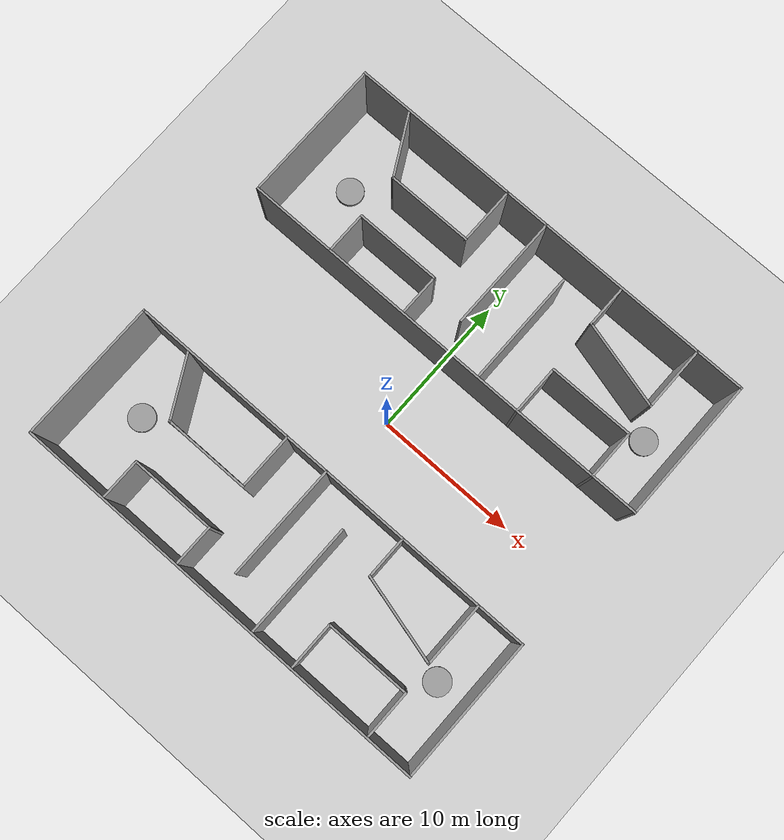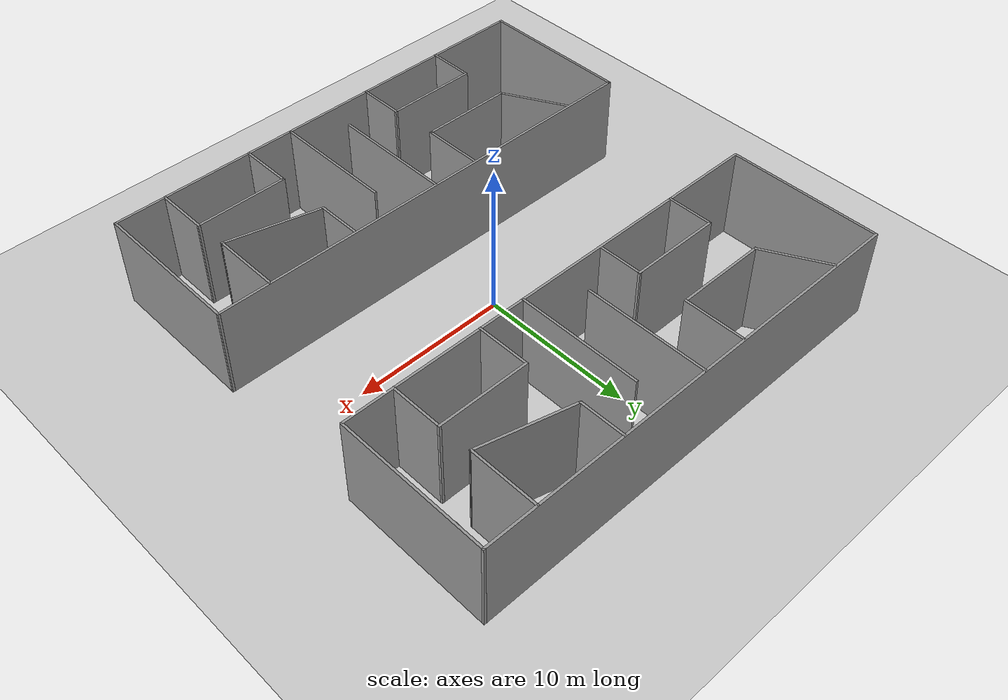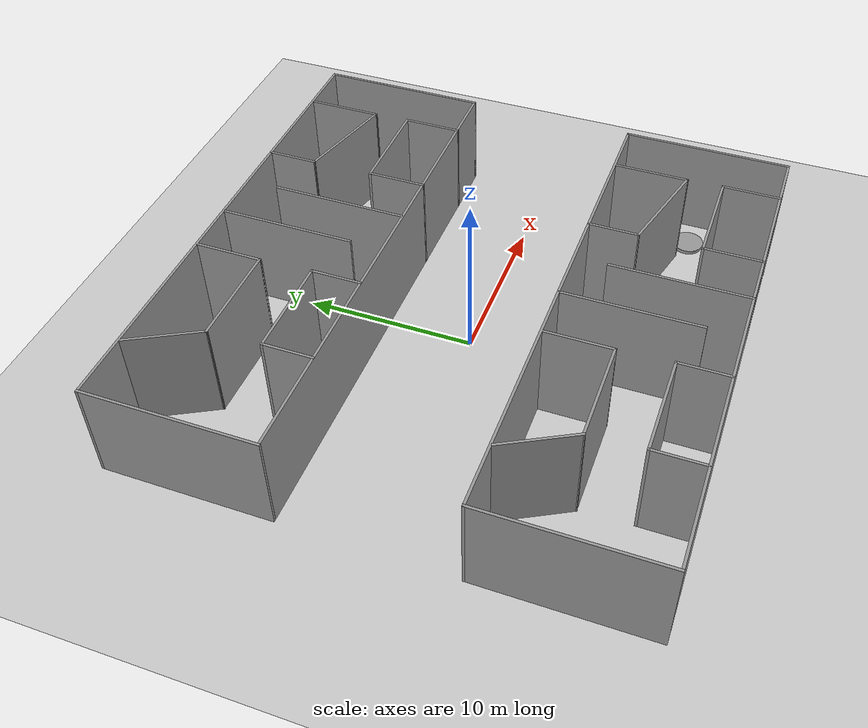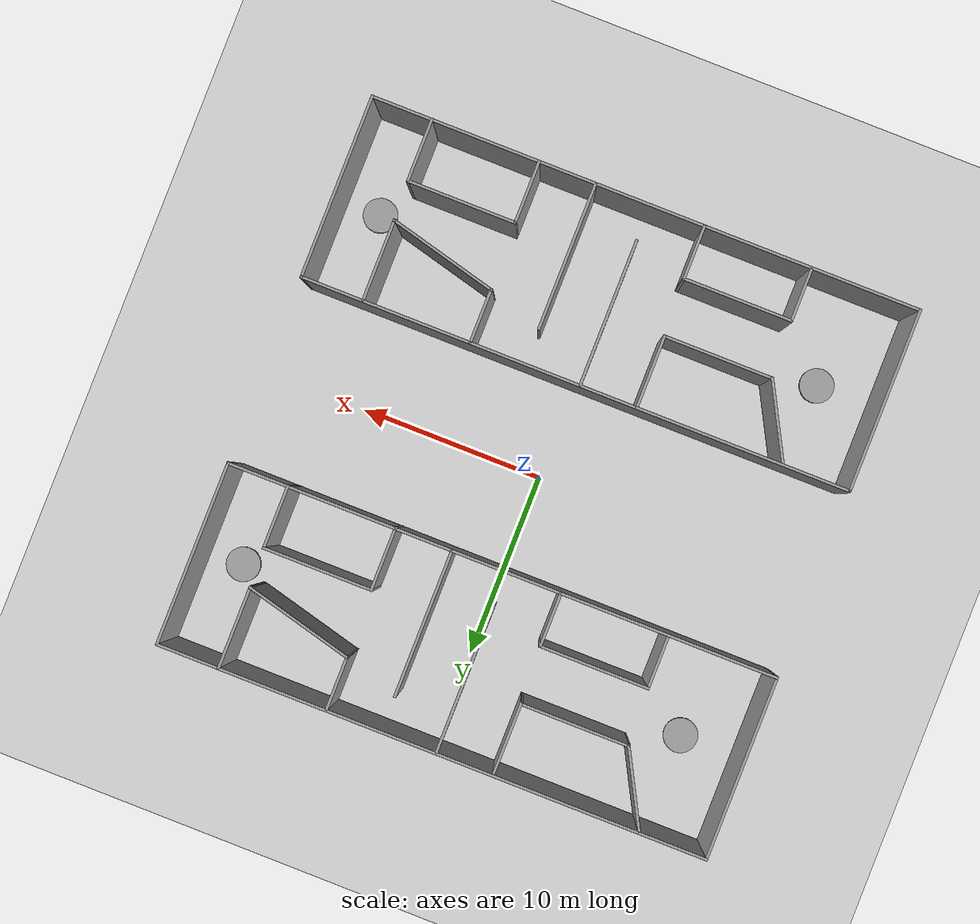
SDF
<sdf version="1.6">
 <world name="default">
  <light name="sun" type="directional">
   <pose>0 0 10 0 -0 0</pose>
   <diffuse>0.8 0.8 0.8 1</diffuse>
   <specular>0.2 0.2 0.2 1</specular>
   <attenuation>
    <range>1000</range>
    <constant>0.9</constant>
    <linear>0.01</linear>
    <quadratic>0.001</quadratic>
   </attenuation>
   <direction>-0.5 0.1 -0.9</direction>
  </light>
  <model name="ground_plane">
   <static>1</static>
   <link name="link">
    <collision name="collision">
     <geometry><plane><normal>0 0 1</normal><size>100 100</size></plane></geometry>
     <surface>
      <contact><collide_bitmask>65535</collide_bitmask></contact>
      <friction><ode><mu>100</mu><mu2>50</mu2></ode></friction>
     </surface>
    </collision>
    <visual name="visual">
     <cast_shadows>0</cast_shadows>
     <geometry><plane><normal>0 0 1</normal><size>100 100</size></plane></geometry>
     <material>
      <script><uri>file://media/materials/scripts/gazebo.material</uri><name>Gazebo/Grey</name></script>
     </material>
    </visual>
   </link>
  </model>
  <gravity>0 0 -9.8</gravity>
  <magnetic_field>6e-06 2.3e-05 -4.2e-05</magnetic_field>
  <atmosphere type="adiabatic"/>
  <physics name="default_physics" default="0" type="ode">
   <max_step_size>0.001</max_step_size>
   <real_time_factor>1</real_time_factor>
   <real_time_update_rate>1000</real_time_update_rate>
  </physics>
  <scene><ambient>0.4 0.4 0.4 1</ambient><background>0.7 0.7 0.7 1</background><shadows>1</shadows></scene>
  <spherical_coordinates>
   <surface_model>EARTH_WGS84</surface_model>
   <latitude_deg>0</latitude_deg>
   <longitude_deg>0</longitude_deg>
   <elevation>0</elevation>
   <heading_deg>0</heading_deg>
  </spherical_coordinates>
  <model name="static_cylinder">
   <link name="link">
    <inertial>
     <mass>1</mass>
     <inertia><ixx>0.145833</ixx><ixy>0</ixy><ixz>0</ixz><iyy>0.145833</iyy><iyz>0</iyz><izz>0.125</izz></inertia>
    </inertial>
    <visual name="visual">
     <geometry><cylinder><radius>0.935681</radius><length>0.376628</length></cylinder></geometry>
     <material>
      <script><name>Gazebo/Grey</name><uri>file://media/materials/scripts/gazebo.material</uri></script>
      <shader type="pixel"/>
      <ambient>0.3 0.3 0.3 1</ambient>
      <diffuse>0.7 0.7 0.7 1</diffuse>
      <specular>0.01 0.01 0.01 1</specular>
      <emissive>0 0 0 1</emissive>
     </material>
    </visual>
    <collision name="collision">
     <geometry><cylinder><radius>0.935681</radius><length>0.376628</length></cylinder></geometry>
     <surface>
      <friction>
       <ode><mu>1</mu><mu2>1</mu2><fdir1>0 0 0</fdir1><slip1>0</slip1><slip2>0</slip2></ode>
       <torsional>
        <coefficient>1</coefficient>
        <patch_radius>0</patch_radius>
        <surface_radius>0</surface_radius>
        <use_patch_radius>1</use_patch_radius>
        <ode><slip>0</slip></ode>
       </torsional>
      </friction>
      <bounce><restitution_coefficient>0</restitution_coefficient><threshold>1e+06</threshold></bounce>
      <contact>
       <collide_without_contact>0</collide_without_contact>
       <collide_without_contact_bitmask>1</collide_without_contact_bitmask>
       <collide_bitmask>1</collide_bitmask>
       <ode>
        <soft_cfm>0</soft_cfm>
        <soft_erp>0.2</soft_erp>
        <kp>1e+13</kp>
        <kd>1</kd>
        <max_vel>0.01</max_vel>
        <min_depth>0</min_depth>
       </ode>
       <bullet>
        <split_impulse>1</split_impulse>
        <split_impulse_penetration_threshold>-0.01</split_impulse_penetration_threshold>
        <soft_cfm>0</soft_cfm>
        <soft_erp>0.2</soft_erp>
        <kp>1e+13</kp>
        <kd>1</kd>
       </bullet>
      </contact>
     </surface>
    </collision>
   </link>
   <static>1</static>
   <pose>-12 10 0 0 -0 0</pose>
  </model>
  <model name="static_cylinder_clone">
   <link name="link">
    <inertial>
     <mass>1</mass>
     <inertia><ixx>0.145833</ixx><ixy>0</ixy><ixz>0</ixz><iyy>0.145833</iyy><iyz>0</iyz><izz>0.125</izz></inertia>
    </inertial>
    <visual name="visual">
     <geometry><cylinder><radius>0.935682</radius><length>0.376629</length></cylinder></geometry>
     <material>
      <script><name>Gazebo/Grey</name><uri>file://media/materials/scripts/gazebo.material</uri></script>
      <shader type="pixel"/>
      <ambient>0.3 0.3 0.3 1</ambient>
      <diffuse>0.7 0.7 0.7 1</diffuse>
      <specular>0.01 0.01 0.01 1</specular>
      <emissive>0 0 0 1</emissive>
     </material>
    </visual>
    <collision name="collision">
     <geometry><cylinder><radius>0.935682</radius><length>0.376629</length></cylinder></geometry>
     <surface>
      <friction>
       <ode><mu>1</mu><mu2>1</mu2><fdir1>0 0 0</fdir1><slip1>0</slip1><slip2>0</slip2></ode>
       <torsional>
        <coefficient>1</coefficient>
        <patch_radius>0</patch_radius>
        <surface_radius>0</surface_radius>
        <use_patch_radius>1</use_patch_radius>
        <ode><slip>0</slip></ode>
       </torsional>
      </friction>
      <bounce><restitution_coefficient>0</restitution_coefficient><threshold>1e+06</threshold></bounce>
      <contact>
       <collide_without_contact>0</collide_without_contact>
       <collide_without_contact_bitmask>1</collide_without_contact_bitmask>
       <collide_bitmask>1</collide_bitmask>
       <ode>
        <soft_cfm>0</soft_cfm>
        <soft_erp>0.2</soft_erp>
        <kp>1e+13</kp>
        <kd>1</kd>
        <max_vel>0.01</max_vel>
        <min_depth>0</min_depth>
       </ode>
       <bullet>
        <split_impulse>1</split_impulse>
        <split_impulse_penetration_threshold>-0.01</split_impulse_penetration_threshold>
        <soft_cfm>0</soft_cfm>
        <soft_erp>0.2</soft_erp>
        <kp>1e+13</kp>
        <kd>1</kd>
       </bullet>
      </contact>
     </surface>
    </collision>
   </link>
   <static>1</static>
   <pose>13 10 0 0 -0 0</pose>
  </model>
  <model name="static_cylinder_clone_0">
   <link name="link">
    <inertial>
     <mass>1</mass>
     <inertia><ixx>0.145833</ixx><ixy>0</ixy><ixz>0</ixz><iyy>0.145833</iyy><iyz>0</iyz><izz>0.125</izz></inertia>
    </inertial>
    <visual name="visual">
     <geometry><cylinder><radius>0.935682</radius><length>0.376629</length></cylinder></geometry>
     <material>
      <script><name>Gazebo/Grey</name><uri>file://media/materials/scripts/gazebo.material</uri></script>
      <shader type="pixel"/>
      <ambient>0.3 0.3 0.3 1</ambient>
      <diffuse>0.7 0.7 0.7 1</diffuse>
      <specular>0.01 0.01 0.01 1</specular>
      <emissive>0 0 0 1</emissive>
     </material>
    </visual>
    <collision name="collision">
     <geometry><cylinder><radius>0.935682</radius><length>0.376629</length></cylinder></geometry>
     <surface>
      <friction>
       <ode><mu>1</mu><mu2>1</mu2><fdir1>0 0 0</fdir1><slip1>0</slip1><slip2>0</slip2></ode>
       <torsional>
        <coefficient>1</coefficient>
        <patch_radius>0</patch_radius>
        <surface_radius>0</surface_radius>
        <use_patch_radius>1</use_patch_radius>
        <ode><slip>0</slip></ode>
       </torsional>
      </friction>
      <bounce><restitution_coefficient>0</restitution_coefficient><threshold>1e+06</threshold></bounce>
      <contact>
       <collide_without_contact>0</collide_without_contact>
       <collide_without_contact_bitmask>1</collide_without_contact_bitmask>
       <collide_bitmask>1</collide_bitmask>
       <ode>
        <soft_cfm>0</soft_cfm>
        <soft_erp>0.2</soft_erp>
        <kp>1e+13</kp>
        <kd>1</kd>
        <max_vel>0.01</max_vel>
        <min_depth>0</min_depth>
       </ode>
       <bullet>
        <split_impulse>1</split_impulse>
        <split_impulse_penetration_threshold>-0.01</split_impulse_penetration_threshold>
        <soft_cfm>0</soft_cfm>
        <soft_erp>0.2</soft_erp>
        <kp>1e+13</kp>
        <kd>1</kd>
       </bullet>
      </contact>
     </surface>
    </collision>
   </link>
   <static>1</static>
   <pose>-12 -10 0 0 -0 0</pose>
  </model>
  <model name="static_cylinder_clone_0_clone">
   <link name="link">
    <inertial>
     <mass>1</mass>
     <inertia><ixx>0.145833</ixx><ixy>0</ixy><ixz>0</ixz><iyy>0.145833</iyy><iyz>0</iyz><izz>0.125</izz></inertia>
    </inertial>
    <visual name="visual">
     <geometry><cylinder><radius>0.935682</radius><length>0.376629</length></cylinder></geometry>
     <material>
      <script><name>Gazebo/Grey</name><uri>file://media/materials/scripts/gazebo.material</uri></script>
      <shader type="pixel"/>
      <ambient>0.3 0.3 0.3 1</ambient>
      <diffuse>0.7 0.7 0.7 1</diffuse>
      <specular>0.01 0.01 0.01 1</specular>
      <emissive>0 0 0 1</emissive>
     </material>
    </visual>
    <collision name="collision">
     <geometry><cylinder><radius>0.935682</radius><length>0.376629</length></cylinder></geometry>
     <surface>
      <friction>
       <ode><mu>1</mu><mu2>1</mu2><fdir1>0 0 0</fdir1><slip1>0</slip1><slip2>0</slip2></ode>
       <torsional>
        <coefficient>1</coefficient>
        <patch_radius>0</patch_radius>
        <surface_radius>0</surface_radius>
        <use_patch_radius>1</use_patch_radius>
        <ode><slip>0</slip></ode>
       </torsional>
      </friction>
      <bounce><restitution_coefficient>0</restitution_coefficient><threshold>1e+06</threshold></bounce>
      <contact>
       <collide_without_contact>0</collide_without_contact>
       <collide_without_contact_bitmask>1</collide_without_contact_bitmask>
       <collide_bitmask>1</collide_bitmask>
       <ode>
        <soft_cfm>0</soft_cfm>
        <soft_erp>0.2</soft_erp>
        <kp>1e+13</kp>
        <kd>1</kd>
        <max_vel>0.01</max_vel>
        <min_depth>0</min_depth>
       </ode>
       <bullet>
        <split_impulse>1</split_impulse>
        <split_impulse_penetration_threshold>-0.01</split_impulse_penetration_threshold>
        <soft_cfm>0</soft_cfm>
        <soft_erp>0.2</soft_erp>
        <kp>1e+13</kp>
        <kd>1</kd>
       </bullet>
      </contact>
     </surface>
    </collision>
   </link>
   <static>1</static>
   <pose>13 -10 0 0 -0 0</pose>
  </model>
  <model name="simple_maze_6">
   <pose>0 10 0 0 -0 0</pose>
   <link name="Wall_0">
    <collision name="Wall_0_Collision">
     <geometry><box><size>10 0.15 6</size></box></geometry>
     <pose>0 0 3 0 -0 0</pose>
    </collision>
    <visual name="Wall_0_Visual">
     <pose>0 0 3 0 -0 0</pose>
     <geometry><box><size>10 0.15 6</size></box></geometry>
     <material>
      <script><uri>file://media/materials/scripts/gazebo.material</uri><name>Gazebo/Grey</name></script>
      <ambient>1 1 1 1</ambient>
     </material>
     <meta><layer>0</layer></meta>
    </visual>
    <pose>-14.925 0.005 0 0 0 -1.5708</pose>
   </link>
   <link name="Wall_1">
    <collision name="Wall_1_Collision">
     <geometry><box><size>30 0.15 6</size></box></geometry>
     <pose>0 0 3 0 -0 0</pose>
    </collision>
    <visual name="Wall_1_Visual">
     <pose>0 0 3 0 -0 0</pose>
     <geometry><box><size>30 0.15 6</size></box></geometry>
     <material>
      <script><uri>file://media/materials/scripts/gazebo.material</uri><name>Gazebo/Grey</name></script>
      <ambient>1 1 1 1</ambient>
     </material>
     <meta><layer>0</layer></meta>
    </visual>
    <pose>0 -4.92 0 0 -0 0</pose>
   </link>
   <link name="Wall_10">
    <collision name="Wall_10_Collision">
     <geometry><box><size>6 0.15 6</size></box></geometry>
     <pose>0 0 3 0 -0 0</pose>
    </collision>
    <visual name="Wall_10_Visual">
     <pose>0 0 3 0 -0 0</pose>
     <geometry><box><size>6 0.15 6</size></box></geometry>
     <material>
      <script><uri>file://media/materials/scripts/gazebo.material</uri><name>Gazebo/Grey</name></script>
      <ambient>1 1 1 1</ambient>
     </material>
     <meta><layer>0</layer></meta>
    </visual>
    <pose>-6.11 -2.05 0 0 -0 3.14159</pose>
   </link>
   <link name="Wall_11">
    <collision name="Wall_11_Collision">
     <geometry><box><size>3 0.15 6</size></box></geometry>
     <pose>0 0 3 0 -0 0</pose>
    </collision>
    <visual name="Wall_11_Visual">
     <pose>0 0 3 0 -0 0</pose>
     <geometry><box><size>3 0.15 6</size></box></geometry>
     <material>
      <script><uri>file://media/materials/scripts/gazebo.material</uri><name>Gazebo/Grey</name></script>
      <ambient>1 1 1 1</ambient>
     </material>
     <meta><layer>0</layer></meta>
    </visual>
    <pose>-9.035 -3.475 0 0 0 -1.5708</pose>
   </link>
   <link name="Wall_13">
    <collision name="Wall_13_Collision">
     <geometry><box><size>8 0.15 6</size></box></geometry>
     <pose>0 0 3 0 -0 0</pose>
    </collision>
    <visual name="Wall_13_Visual">
     <pose>0 0 3 0 -0 0</pose>
     <geometry><box><size>8 0.15 6</size></box></geometry>
     <material>
      <script><uri>file://media/materials/scripts/gazebo.material</uri><name>Gazebo/Grey</name></script>
      <ambient>1 1 1 1</ambient>
     </material>
     <meta><layer>0</layer></meta>
    </visual>
    <pose>-0.245 0.965 0 0 0 -1.5708</pose>
   </link>
   <link name="Wall_16">
    <collision name="Wall_16_Collision">
     <geometry><box><size>8 0.15 6</size></box></geometry>
     <pose>0 0 3 0 -0 0</pose>
    </collision>
    <visual name="Wall_16_Visual">
     <pose>0 0 3 0 -0 0</pose>
     <geometry><box><size>8 0.15 6</size></box></geometry>
     <material>
      <script><uri>file://media/materials/scripts/gazebo.material</uri><name>Gazebo/Grey</name></script>
      <ambient>1 1 1 1</ambient>
     </material>
     <meta><layer>0</layer></meta>
    </visual>
    <pose>2.745 -0.945001 0 0 -0 1.5708</pose>
   </link>
   <link name="Wall_2">
    <collision name="Wall_2_Collision">
     <geometry><box><size>10 0.15 6</size></box></geometry>
     <pose>0 0 3 0 -0 0</pose>
    </collision>
    <visual name="Wall_2_Visual">
     <pose>0 0 3 0 -0 0</pose>
     <geometry><box><size>10 0.15 6</size></box></geometry>
     <material>
      <script><uri>file://media/materials/scripts/gazebo.material</uri><name>Gazebo/Grey</name></script>
      <ambient>1 1 1 1</ambient>
     </material>
     <meta><layer>0</layer></meta>
    </visual>
    <pose>14.925 0.005 0 0 -0 1.5708</pose>
   </link>
   <link name="Wall_26">
    <collision name="Wall_26_Collision">
     <geometry><box><size>3 0.15 6</size></box></geometry>
     <pose>0 0 3 0 -0 0</pose>
    </collision>
    <visual name="Wall_26_Visual">
     <pose>0 0 3 0 -0 0</pose>
     <geometry><box><size>3 0.15 6</size></box></geometry>
     <material>
      <script><uri>file://media/materials/scripts/gazebo.material</uri><name>Gazebo/Grey</name></script>
      <ambient>1 1 1 1</ambient>
     </material>
     <meta><layer>0</layer></meta>
    </visual>
    <pose>5.725 3.465 0 0 0 -1.5708</pose>
   </link>
   <link name="Wall_27">
    <collision name="Wall_27_Collision">
     <geometry><box><size>6.18925 0.15 6</size></box></geometry>
     <pose>0 0 3 0 -0 0</pose>
    </collision>
    <visual name="Wall_27_Visual">
     <pose>0 0 3 0 -0 0</pose>
     <geometry><box><size>6.18925 0.15 6</size></box></geometry>
     <material>
      <script><uri>file://media/materials/scripts/gazebo.material</uri><name>Gazebo/Grey</name></script>
      <ambient>1 1 1 1</ambient>
     </material>
     <meta><layer>0</layer></meta>
    </visual>
    <pose>8.65 1.29 0 0 0 -0.251003</pose>
   </link>
   <link name="Wall_28">
    <collision name="Wall_28_Collision">
     <geometry><box><size>4.5 0.15 6</size></box></geometry>
     <pose>0 0 3 0 -0 0</pose>
    </collision>
    <visual name="Wall_28_Visual">
     <pose>0 0 3 0 -0 0</pose>
     <geometry><box><size>4.5 0.15 6</size></box></geometry>
     <material>
      <script><uri>file://media/materials/scripts/gazebo.material</uri><name>Gazebo/Grey</name></script>
      <ambient>1 1 1 1</ambient>
     </material>
     <meta><layer>0</layer></meta>
    </visual>
    <pose>11.575 2.715 0 0 -0 1.5708</pose>
   </link>
   <link name="Wall_3">
    <collision name="Wall_3_Collision">
     <geometry><box><size>30 0.15 6</size></box></geometry>
     <pose>0 0 3 0 -0 0</pose>
    </collision>
    <visual name="Wall_3_Visual">
     <pose>0 0 3 0 -0 0</pose>
     <geometry><box><size>30 0.15 6</size></box></geometry>
     <material>
      <script><uri>file://media/materials/scripts/gazebo.material</uri><name>Gazebo/Grey</name></script>
      <ambient>1 1 1 1</ambient>
     </material>
     <meta><layer>0</layer></meta>
    </visual>
    <pose>0 4.93 0 0 -0 3.14159</pose>
   </link>
   <link name="Wall_30">
    <collision name="Wall_30_Collision">
     <geometry><box><size>3.5 0.15 6</size></box></geometry>
     <pose>0 0 3 0 -0 0</pose>
    </collision>
    <visual name="Wall_30_Visual">
     <pose>0 0 3 0 -0 0</pose>
     <geometry><box><size>3.5 0.15 6</size></box></geometry>
     <material>
      <script><uri>file://media/materials/scripts/gazebo.material</uri><name>Gazebo/Grey</name></script>
      <ambient>1 1 1 1</ambient>
     </material>
     <meta><layer>0</layer></meta>
    </visual>
    <pose>11.675 -3.255 0 0 -0 1.5708</pose>
   </link>
   <link name="Wall_31">
    <collision name="Wall_31_Collision">
     <geometry><box><size>6 0.15 6</size></box></geometry>
     <pose>0 0 3 0 -0 0</pose>
    </collision>
    <visual name="Wall_31_Visual">
     <pose>0 0 3 0 -0 0</pose>
     <geometry><box><size>6 0.15 6</size></box></geometry>
     <material>
      <script><uri>file://media/materials/scripts/gazebo.material</uri><name>Gazebo/Grey</name></script>
      <ambient>1 1 1 1</ambient>
     </material>
     <meta><layer>0</layer></meta>
    </visual>
    <pose>8.75 -1.58 0 0 -0 3.14159</pose>
   </link>
   <link name="Wall_32">
    <collision name="Wall_32_Collision">
     <geometry><box><size>3.5 0.15 6</size></box></geometry>
     <pose>0 0 3 0 -0 0</pose>
    </collision>
    <visual name="Wall_32_Visual">
     <pose>0 0 3 0 -0 0</pose>
     <geometry><box><size>3.5 0.15 6</size></box></geometry>
     <material>
      <script><uri>file://media/materials/scripts/gazebo.material</uri><name>Gazebo/Grey</name></script>
      <ambient>1 1 1 1</ambient>
     </material>
     <meta><layer>0</layer></meta>
    </visual>
    <pose>5.825 -3.255 0 0 0 -1.5708</pose>
   </link>
   <link name="Wall_5">
    <collision name="Wall_5_Collision">
     <geometry><box><size>4.46832 0.15 6</size></box></geometry>
     <pose>0 0 3 0 -0 0</pose>
    </collision>
    <visual name="Wall_5_Visual">
     <pose>0 0 3 0 -0 0</pose>
     <geometry><box><size>4.46832 0.15 6</size></box></geometry>
     <material>
      <script><uri>file://media/materials/scripts/gazebo.material</uri><name>Gazebo/Grey</name></script>
      <ambient>1 1 1 1</ambient>
     </material>
     <meta><layer>0</layer></meta>
    </visual>
    <pose>-10.21 2.9295 0 0 0 -1.07618</pose>
   </link>
   <link name="Wall_6">
    <collision name="Wall_6_Collision">
     <geometry><box><size>6 0.15 6</size></box></geometry>
     <pose>0 0 3 0 -0 0</pose>
    </collision>
    <visual name="Wall_6_Visual">
     <pose>0 0 3 0 -0 0</pose>
     <geometry><box><size>6 0.15 6</size></box></geometry>
     <material>
      <script><uri>file://media/materials/scripts/gazebo.material</uri><name>Gazebo/Grey</name></script>
      <ambient>1 1 1 1</ambient>
     </material>
     <meta><layer>0</layer></meta>
    </visual>
    <pose>-6.26 1.029 0 0 -0 0</pose>
   </link>
   <link name="Wall_7">
    <collision name="Wall_7_Collision">
     <geometry><box><size>4 0.15 6</size></box></geometry>
     <pose>0 0 3 0 -0 0</pose>
    </collision>
    <visual name="Wall_7_Visual">
     <pose>0 0 3 0 -0 0</pose>
     <geometry><box><size>4 0.15 6</size></box></geometry>
     <material>
      <script><uri>file://media/materials/scripts/gazebo.material</uri><name>Gazebo/Grey</name></script>
      <ambient>1 1 1 1</ambient>
     </material>
     <meta><layer>0</layer></meta>
    </visual>
    <pose>-3.335 2.954 0 0 -0 1.5708</pose>
   </link>
   <link name="Wall_9">
    <collision name="Wall_9_Collision">
     <geometry><box><size>3 0.15 6</size></box></geometry>
     <pose>0 0 3 0 -0 0</pose>
    </collision>
    <visual name="Wall_9_Visual">
     <pose>0 0 3 0 -0 0</pose>
     <geometry><box><size>3 0.15 6</size></box></geometry>
     <material>
      <script><uri>file://media/materials/scripts/gazebo.material</uri><name>Gazebo/Grey</name></script>
      <ambient>1 1 1 1</ambient>
     </material>
     <meta><layer>0</layer></meta>
    </visual>
    <pose>-3.185 -3.475 0 0 -0 1.5708</pose>
   </link>
   <static>1</static>
  </model>
  <model name="simple_maze_6_0">
   <pose>0 -10 0 0 -0 0</pose>
   <link name="Wall_0">
    <collision name="Wall_0_Collision">
     <geometry><box><size>10 0.15 6</size></box></geometry>
     <pose>0 0 3 0 -0 0</pose>
    </collision>
    <visual name="Wall_0_Visual">
     <pose>0 0 3 0 -0 0</pose>
     <geometry><box><size>10 0.15 6</size></box></geometry>
     <material>
      <script><uri>file://media/materials/scripts/gazebo.material</uri><name>Gazebo/Grey</name></script>
      <ambient>1 1 1 1</ambient>
     </material>
     <meta><layer>0</layer></meta>
    </visual>
    <pose>-14.925 0.005 0 0 0 -1.5708</pose>
   </link>
   <link name="Wall_1">
    <collision name="Wall_1_Collision">
     <geometry><box><size>30 0.15 6</size></box></geometry>
     <pose>0 0 3 0 -0 0</pose>
    </collision>
    <visual name="Wall_1_Visual">
     <pose>0 0 3 0 -0 0</pose>
     <geometry><box><size>30 0.15 6</size></box></geometry>
     <material>
      <script><uri>file://media/materials/scripts/gazebo.material</uri><name>Gazebo/Grey</name></script>
      <ambient>1 1 1 1</ambient>
     </material>
     <meta><layer>0</layer></meta>
    </visual>
    <pose>0 -4.92 0 0 -0 0</pose>
   </link>
   <link name="Wall_10">
    <collision name="Wall_10_Collision">
     <geometry><box><size>6 0.15 6</size></box></geometry>
     <pose>0 0 3 0 -0 0</pose>
    </collision>
    <visual name="Wall_10_Visual">
     <pose>0 0 3 0 -0 0</pose>
     <geometry><box><size>6 0.15 6</size></box></geometry>
     <material>
      <script><uri>file://media/materials/scripts/gazebo.material</uri><name>Gazebo/Grey</name></script>
      <ambient>1 1 1 1</ambient>
     </material>
     <meta><layer>0</layer></meta>
    </visual>
    <pose>-6.11 -2.05 0 0 -0 3.14159</pose>
   </link>
   <link name="Wall_11">
    <collision name="Wall_11_Collision">
     <geometry><box><size>3 0.15 6</size></box></geometry>
     <pose>0 0 3 0 -0 0</pose>
    </collision>
    <visual name="Wall_11_Visual">
     <pose>0 0 3 0 -0 0</pose>
     <geometry><box><size>3 0.15 6</size></box></geometry>
     <material>
      <script><uri>file://media/materials/scripts/gazebo.material</uri><name>Gazebo/Grey</name></script>
      <ambient>1 1 1 1</ambient>
     </material>
     <meta><layer>0</layer></meta>
    </visual>
    <pose>-9.035 -3.475 0 0 0 -1.5708</pose>
   </link>
   <link name="Wall_13">
    <collision name="Wall_13_Collision">
     <geometry><box><size>8 0.15 6</size></box></geometry>
     <pose>0 0 3 0 -0 0</pose>
    </collision>
    <visual name="Wall_13_Visual">
     <pose>0 0 3 0 -0 0</pose>
     <geometry><box><size>8 0.15 6</size></box></geometry>
     <material>
      <script><uri>file://media/materials/scripts/gazebo.material</uri><name>Gazebo/Grey</name></script>
      <ambient>1 1 1 1</ambient>
     </material>
     <meta><layer>0</layer></meta>
    </visual>
    <pose>-0.245 0.965 0 0 0 -1.5708</pose>
   </link>
   <link name="Wall_16">
    <collision name="Wall_16_Collision">
     <geometry><box><size>8 0.15 6</size></box></geometry>
     <pose>0 0 3 0 -0 0</pose>
    </collision>
    <visual name="Wall_16_Visual">
     <pose>0 0 3 0 -0 0</pose>
     <geometry><box><size>8 0.15 6</size></box></geometry>
     <material>
      <script><uri>file://media/materials/scripts/gazebo.material</uri><name>Gazebo/Grey</name></script>
      <ambient>1 1 1 1</ambient>
     </material>
     <meta><layer>0</layer></meta>
    </visual>
    <pose>2.745 -0.945001 0 0 -0 1.5708</pose>
   </link>
   <link name="Wall_2">
    <collision name="Wall_2_Collision">
     <geometry><box><size>10 0.15 6</size></box></geometry>
     <pose>0 0 3 0 -0 0</pose>
    </collision>
    <visual name="Wall_2_Visual">
     <pose>0 0 3 0 -0 0</pose>
     <geometry><box><size>10 0.15 6</size></box></geometry>
     <material>
      <script><uri>file://media/materials/scripts/gazebo.material</uri><name>Gazebo/Grey</name></script>
      <ambient>1 1 1 1</ambient>
     </material>
     <meta><layer>0</layer></meta>
    </visual>
    <pose>14.925 0.005 0 0 -0 1.5708</pose>
   </link>
   <link name="Wall_26">
    <collision name="Wall_26_Collision">
     <geometry><box><size>3 0.15 6</size></box></geometry>
     <pose>0 0 3 0 -0 0</pose>
    </collision>
    <visual name="Wall_26_Visual">
     <pose>0 0 3 0 -0 0</pose>
     <geometry><box><size>3 0.15 6</size></box></geometry>
     <material>
      <script><uri>file://media/materials/scripts/gazebo.material</uri><name>Gazebo/Grey</name></script>
      <ambient>1 1 1 1</ambient>
     </material>
     <meta><layer>0</layer></meta>
    </visual>
    <pose>5.725 3.465 0 0 0 -1.5708</pose>
   </link>
   <link name="Wall_27">
    <collision name="Wall_27_Collision">
     <geometry><box><size>6.18925 0.15 6</size></box></geometry>
     <pose>0 0 3 0 -0 0</pose>
    </collision>
    <visual name="Wall_27_Visual">
     <pose>0 0 3 0 -0 0</pose>
     <geometry><box><size>6.18925 0.15 6</size></box></geometry>
     <material>
      <script><uri>file://media/materials/scripts/gazebo.material</uri><name>Gazebo/Grey</name></script>
      <ambient>1 1 1 1</ambient>
     </material>
     <meta><layer>0</layer></meta>
    </visual>
    <pose>8.65 1.29 0 0 0 -0.251003</pose>
   </link>
   <link name="Wall_28">
    <collision name="Wall_28_Collision">
     <geometry><box><size>4.5 0.15 6</size></box></geometry>
     <pose>0 0 3 0 -0 0</pose>
    </collision>
    <visual name="Wall_28_Visual">
     <pose>0 0 3 0 -0 0</pose>
     <geometry><box><size>4.5 0.15 6</size></box></geometry>
     <material>
      <script><uri>file://media/materials/scripts/gazebo.material</uri><name>Gazebo/Grey</name></script>
      <ambient>1 1 1 1</ambient>
     </material>
     <meta><layer>0</layer></meta>
    </visual>
    <pose>11.575 2.715 0 0 -0 1.5708</pose>
   </link>
   <link name="Wall_3">
    <collision name="Wall_3_Collision">
     <geometry><box><size>30 0.15 6</size></box></geometry>
     <pose>0 0 3 0 -0 0</pose>
    </collision>
    <visual name="Wall_3_Visual">
     <pose>0 0 3 0 -0 0</pose>
     <geometry><box><size>30 0.15 6</size></box></geometry>
     <material>
      <script><uri>file://media/materials/scripts/gazebo.material</uri><name>Gazebo/Grey</name></script>
      <ambient>1 1 1 1</ambient>
     </material>
     <meta><layer>0</layer></meta>
    </visual>
    <pose>0 4.93 0 0 -0 3.14159</pose>
   </link>
   <link name="Wall_30">
    <collision name="Wall_30_Collision">
     <geometry><box><size>3.5 0.15 6</size></box></geometry>
     <pose>0 0 3 0 -0 0</pose>
    </collision>
    <visual name="Wall_30_Visual">
     <pose>0 0 3 0 -0 0</pose>
     <geometry><box><size>3.5 0.15 6</size></box></geometry>
     <material>
      <script><uri>file://media/materials/scripts/gazebo.material</uri><name>Gazebo/Grey</name></script>
      <ambient>1 1 1 1</ambient>
     </material>
     <meta><layer>0</layer></meta>
    </visual>
    <pose>11.675 -3.255 0 0 -0 1.5708</pose>
   </link>
   <link name="Wall_31">
    <collision name="Wall_31_Collision">
     <geometry><box><size>6 0.15 6</size></box></geometry>
     <pose>0 0 3 0 -0 0</pose>
    </collision>
    <visual name="Wall_31_Visual">
     <pose>0 0 3 0 -0 0</pose>
     <geometry><box><size>6 0.15 6</size></box></geometry>
     <material>
      <script><uri>file://media/materials/scripts/gazebo.material</uri><name>Gazebo/Grey</name></script>
      <ambient>1 1 1 1</ambient>
     </material>
     <meta><layer>0</layer></meta>
    </visual>
    <pose>8.75 -1.58 0 0 -0 3.14159</pose>
   </link>
   <link name="Wall_32">
    <collision name="Wall_32_Collision">
     <geometry><box><size>3.5 0.15 6</size></box></geometry>
     <pose>0 0 3 0 -0 0</pose>
    </collision>
    <visual name="Wall_32_Visual">
     <pose>0 0 3 0 -0 0</pose>
     <geometry><box><size>3.5 0.15 6</size></box></geometry>
     <material>
      <script><uri>file://media/materials/scripts/gazebo.material</uri><name>Gazebo/Grey</name></script>
      <ambient>1 1 1 1</ambient>
     </material>
     <meta><layer>0</layer></meta>
    </visual>
    <pose>5.825 -3.255 0 0 0 -1.5708</pose>
   </link>
   <link name="Wall_5">
    <collision name="Wall_5_Collision">
     <geometry><box><size>4.46832 0.15 6</size></box></geometry>
     <pose>0 0 3 0 -0 0</pose>
    </collision>
    <visual name="Wall_5_Visual">
     <pose>0 0 3 0 -0 0</pose>
     <geometry><box><size>4.46832 0.15 6</size></box></geometry>
     <material>
      <script><uri>file://media/materials/scripts/gazebo.material</uri><name>Gazebo/Grey</name></script>
      <ambient>1 1 1 1</ambient>
     </material>
     <meta><layer>0</layer></meta>
    </visual>
    <pose>-10.21 2.9295 0 0 0 -1.07618</pose>
   </link>
   <link name="Wall_6">
    <collision name="Wall_6_Collision">
     <geometry><box><size>6 0.15 6</size></box></geometry>
     <pose>0 0 3 0 -0 0</pose>
    </collision>
    <visual name="Wall_6_Visual">
     <pose>0 0 3 0 -0 0</pose>
     <geometry><box><size>6 0.15 6</size></box></geometry>
     <material>
      <script><uri>file://media/materials/scripts/gazebo.material</uri><name>Gazebo/Grey</name></script>
      <ambient>1 1 1 1</ambient>
     </material>
     <meta><layer>0</layer></meta>
    </visual>
    <pose>-6.26 1.029 0 0 -0 0</pose>
   </link>
   <link name="Wall_7">
    <collision name="Wall_7_Collision">
     <geometry><box><size>4 0.15 6</size></box></geometry>
     <pose>0 0 3 0 -0 0</pose>
    </collision>
    <visual name="Wall_7_Visual">
     <pose>0 0 3 0 -0 0</pose>
     <geometry><box><size>4 0.15 6</size></box></geometry>
     <material>
      <script><uri>file://media/materials/scripts/gazebo.material</uri><name>Gazebo/Grey</name></script>
      <ambient>1 1 1 1</ambient>
     </material>
     <meta><layer>0</layer></meta>
    </visual>
    <pose>-3.335 2.954 0 0 -0 1.5708</pose>
   </link>
   <link name="Wall_9">
    <collision name="Wall_9_Collision">
     <geometry><box><size>3 0.15 6</size></box></geometry>
     <pose>0 0 3 0 -0 0</pose>
    </collision>
    <visual name="Wall_9_Visual">
     <pose>0 0 3 0 -0 0</pose>
     <geometry><box><size>3 0.15 6</size></box></geometry>
     <material>
      <script><uri>file://media/materials/scripts/gazebo.material</uri><name>Gazebo/Grey</name></script>
      <ambient>1 1 1 1</ambient>
     </material>
     <meta><layer>0</layer></meta>
    </visual>
    <pose>-3.185 -3.475 0 0 -0 1.5708</pose>
   </link>
   <static>1</static>
  </model>
 </world>
</sdf>
